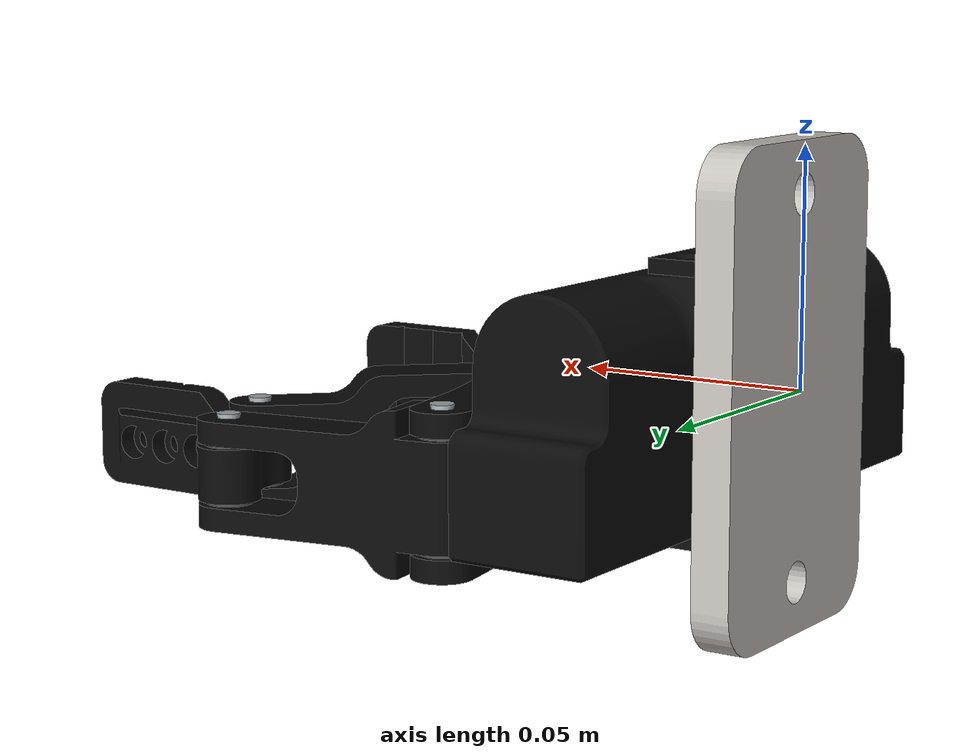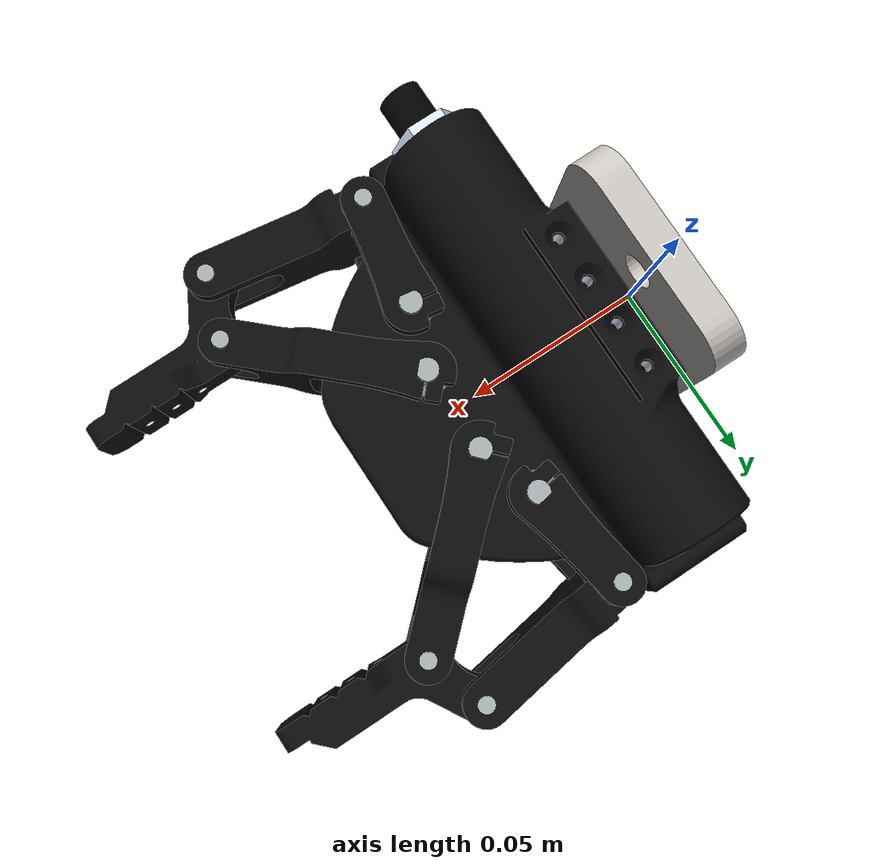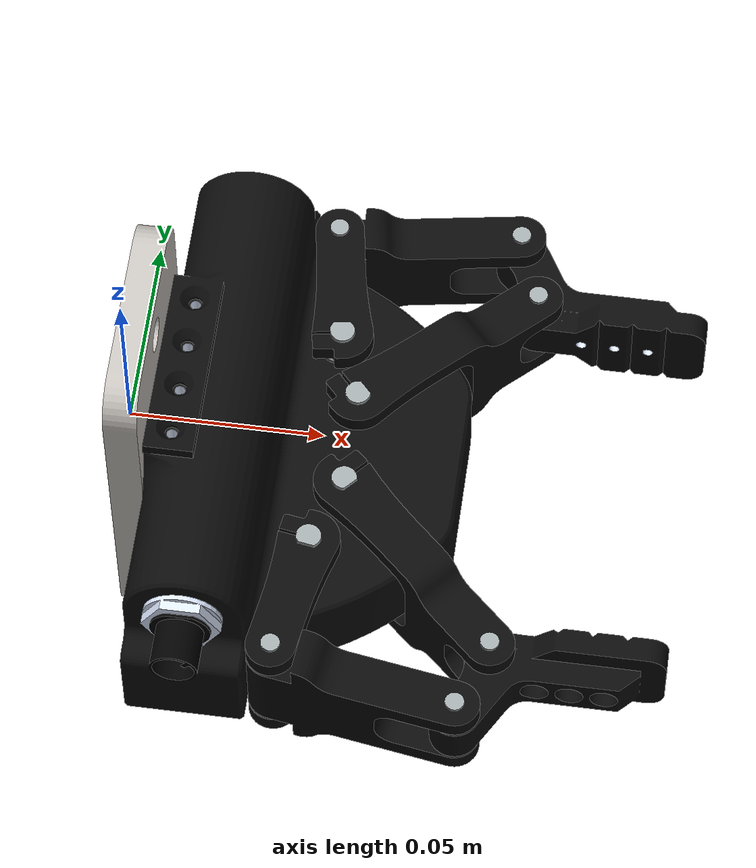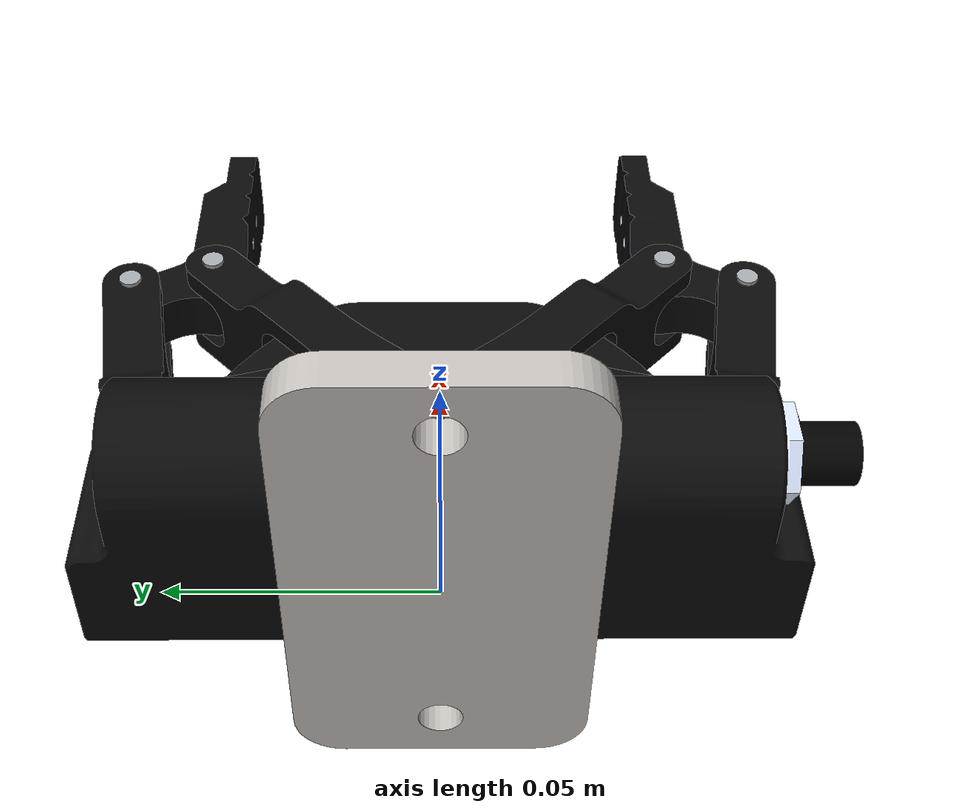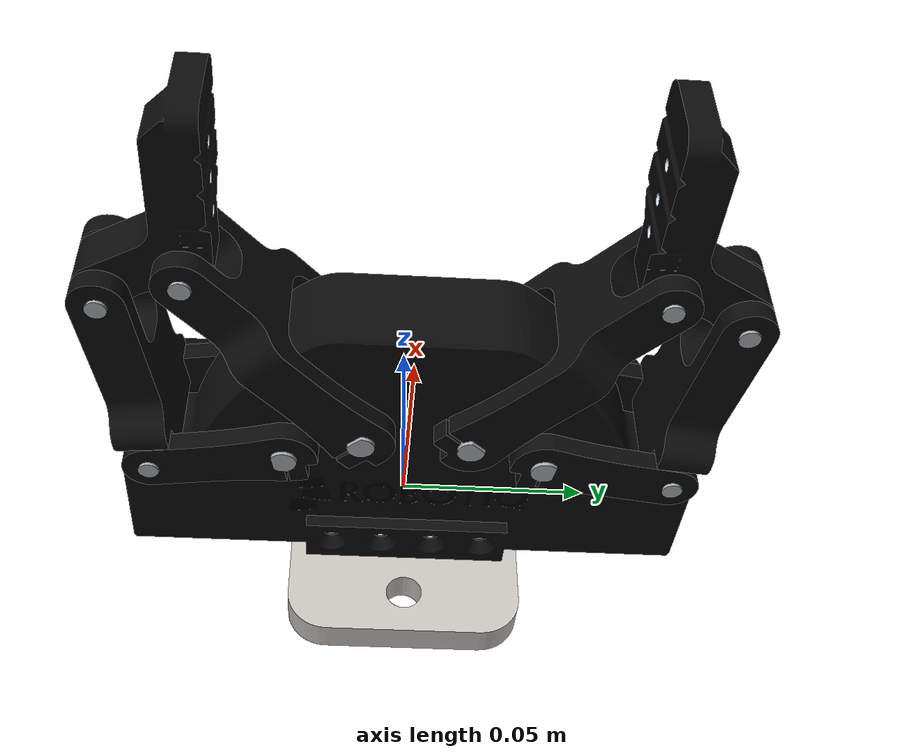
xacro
<?xml version="1.0" ?>

<!--
    Please note that the base link of the 2f gripper is
    "${prefix}robotiq_85_adapter_link"
 -->

<robot name="robotiq_c2_model" xmlns:xacro="http://ros.org/wiki/xacro">
    <xacro:include filename="$(find robotiq_2f_c2_gripper_visualization)/urdf/robotiq_c2_model_macro.xacro" />
    <xacro:robotiq_c2_model prefix=""/>
</robot>

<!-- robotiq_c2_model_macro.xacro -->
<robot xmlns:xacro="http://ros.org/wiki/xacro">
  <xacro:macro name="robotiq_c2_model" params="prefix">

  <link name="${prefix}robotiq_85_adapter_link">
    <visual>
      <geometry>
        <mesh filename="package://robotiq_2f_c2_gripper_visualization/meshes/robotiq_c2/visual/robotiq_85_gripper_adapter_plate.dae"/>
      </geometry>
      <origin rpy="1.5707 0 1.5707" xyz="0 0 0"/>
    </visual>
    <collision>
      <geometry>
        <mesh filename="package://robotiq_2f_c2_gripper_visualization/meshes/robotiq_c2/collision/robotiq_85_gripper_adapter_plate.dae"/>
      </geometry>
      <origin rpy="0 0 1.5707" xyz="0 0 0"/>
    </collision>
  </link>

  <joint name="${prefix}robotiq_85_base_joint" type="fixed">
    <parent link="${prefix}robotiq_85_adapter_link"/>
    <child link="${prefix}robotiq_85_base_link"/>
    <axis xyz="1 0 0"/>
    <origin rpy="0 0 0" xyz=".0085 0 -.0041"/>
  </joint>

  <link name="${prefix}robotiq_85_base_link">
    <visual>
      <geometry>
        <mesh filename="package://robotiq_2f_c2_gripper_visualization/meshes/robotiq_c2/visual/robotiq_85_gripper_base.dae"/>
      </geometry>
      <origin rpy="3.1415 0 1.5707" xyz="0 0 0"/>
    </visual>
    <collision>
      <geometry>
        <mesh filename="package://robotiq_2f_c2_gripper_visualization/meshes/robotiq_c2/collision/robotiq_85_gripper_base.dae"/>
      </geometry>
      <origin rpy="1.5707 0 1.5707" xyz="0 0 0"/>
    </collision>
  </link>

  <joint name="${prefix}robotiq_85_left_knuckle_joint" type="revolute">
    <parent link="${prefix}robotiq_85_base_link"/>
    <child link="${prefix}robotiq_85_left_knuckle_link"/>
    <axis xyz="1 0 0"/>
    <origin rpy="-1.5707 1.5707 0" xyz=".04191 .0306 0"/>
    <limit lower="0" upper=".8575" velocity="2.0" effort="1000"/>
  </joint>

  <joint name="${prefix}robotiq_85_right_knuckle_joint" type="revolute">
    <parent link="${prefix}robotiq_85_base_link"/>
    <child link="${prefix}robotiq_85_right_knuckle_link"/>
    <axis xyz="1 0 0"/>
    <origin rpy="1.5707 -1.5707 0" xyz=".04191 -.0306 0"/>
    <limit lower="0" upper="1.5707" velocity="2.0" effort="1000"/>
    <mimic joint="${prefix}robotiq_85_left_knuckle_joint" multiplier="1"/>
  </joint>

  <link name="${prefix}robotiq_85_left_knuckle_link">
    <visual>
      <geometry>
        <mesh filename="package://robotiq_2f_c2_gripper_visualization/meshes/robotiq_c2/visual/robotiq_85_gripper_joint_0_L.dae"/>
      </geometry>
      <origin rpy="3.14159 -1.5707 0" xyz="0 .04191 -.0306"/>
    </visual>
    <collision>
      <geometry>
        <mesh filename="package://robotiq_2f_c2_gripper_visualization/meshes/robotiq_c2/collision/robotiq_85_gripper_joint_0_L.dae"/>
      </geometry>
      <origin rpy="1.5707 -1.5707 0" xyz="0 .04191 -.0306"/>
    </collision>
  </link>

  <link name="${prefix}robotiq_85_right_knuckle_link">
    <visual>
      <geometry>
        <mesh filename="package://robotiq_2f_c2_gripper_visualization/meshes/robotiq_c2/visual/robotiq_85_gripper_joint_0_R.dae"/>
      </geometry>
      <origin rpy="3.14159 1.5707 0" xyz="0 .04191 -.0306"/>
    </visual>
    <collision>
      <geometry>
        <mesh filename="package://robotiq_2f_c2_gripper_visualization/meshes/robotiq_c2/collision/robotiq_85_gripper_joint_0_R.dae"/>
      </geometry>
      <origin rpy="1.5707 1.5707 0" xyz="0 .04191 -.0306"/>
    </collision>
  </link>

  <joint name="${prefix}robotiq_85_left_finger_joint" type="fixed">
    <parent link="${prefix}robotiq_85_left_knuckle_link"/>
    <child link="${prefix}robotiq_85_left_finger_link"/>
    <axis xyz="1 0 0"/>
    <origin rpy="3.1415 0 0" xyz="0 .00508 .03134"/>
    <limit lower="0" upper="1.5707" velocity="2.0" effort="1000"/>
  </joint>

  <joint name="${prefix}robotiq_85_right_finger_joint" type="fixed">
    <parent link="${prefix}robotiq_85_right_knuckle_link"/>
    <child link="${prefix}robotiq_85_right_finger_link"/>
    <axis xyz="1 0 0"/>
    <origin rpy="3.1415 0 0" xyz="0 .00508 .03134"/>
    <limit lower="0" upper="1.5707" velocity="2.0" effort="1000"/>
  </joint>

  <link name="${prefix}robotiq_85_left_finger_link">
    <visual>
      <geometry>
        <mesh filename="package://robotiq_2f_c2_gripper_visualization/meshes/robotiq_c2/visual/robotiq_85_gripper_joint_1_L.dae"/>
      </geometry>
      <origin rpy="0 1.5707 0" xyz="0 -.03683 .06194"/>
    </visual>
    <collision>
      <geometry>
        <mesh filename="package://robotiq_2f_c2_gripper_visualization/meshes/robotiq_c2/collision/robotiq_85_gripper_joint_1_L.dae"/>
      </geometry>
      <origin rpy="-1.5707 1.5707 0" xyz="0 -.03683 .06194"/>
    </collision>
  </link>

  <link name="${prefix}robotiq_85_right_finger_link">
    <visual>
      <geometry>
        <mesh filename="package://robotiq_2f_c2_gripper_visualization/meshes/robotiq_c2/visual/robotiq_85_gripper_joint_1_R.dae"/>
      </geometry>
      <origin rpy="0 -1.5707 0" xyz="0 -.03683 .06194"/>
    </visual>
    <collision>
      <geometry>
        <mesh filename="package://robotiq_2f_c2_gripper_visualization/meshes/robotiq_c2/collision/robotiq_85_gripper_joint_1_R.dae"/>
      </geometry>
      <origin rpy="-1.5707 -1.5707 0" xyz="0 -.03683 .06194"/>
    </collision>
  </link>

  <joint name="${prefix}robotiq_85_left_inner_knuckle_joint" type="revolute">
    <parent link="${prefix}robotiq_85_base_link"/>
    <child link="${prefix}robotiq_85_left_inner_knuckle_link"/>
    <axis xyz="1 0 0"/>
    <origin rpy="1.5707 1.5707 0" xyz=".04843 .0127 0"/>
    <limit lower="0" upper="1.5707" velocity="2.0" effort="1000"/>
    <mimic joint="${prefix}robotiq_85_left_knuckle_joint" offset="0"/>
  </joint>

  <joint name="${prefix}robotiq_85_right_inner_knuckle_joint" type="revolute">
    <parent link="${prefix}robotiq_85_base_link"/>
    <child link="${prefix}robotiq_85_right_inner_knuckle_link"/>
    <axis xyz="1 0 0"/>
    <origin rpy="-1.5707 -1.5707 0" xyz=".04843 -.0127 0"/>
    <limit lower="0" upper="1.5707" velocity="2.0" effort="1000"/>
    <mimic joint="${prefix}robotiq_85_left_knuckle_joint" offset="0"/>
  </joint>

  <link name="${prefix}robotiq_85_left_inner_knuckle_link">
    <visual>
      <geometry>
        <mesh filename="package://robotiq_2f_c2_gripper_visualization/meshes/robotiq_c2/visual/robotiq_85_gripper_joint_2_L.dae"/>
      </geometry>
      <origin rpy="0 1.5707 0" xyz="0 -.04843 .0127"/>
    </visual>
    <collision>
      <geometry>
        <mesh filename="package://robotiq_2f_c2_gripper_visualization/meshes/robotiq_c2/collision/robotiq_85_gripper_joint_2_L.dae"/>
      </geometry>
      <origin rpy="-1.5707 1.5707 0" xyz="0 -.04843 .0127"/>
    </collision>
  </link>

  <link name="${prefix}robotiq_85_right_inner_knuckle_link">
    <visual>
      <geometry>
        <mesh filename="package://robotiq_2f_c2_gripper_visualization/meshes/robotiq_c2/visual/robotiq_85_gripper_joint_2_R.dae"/>
      </geometry>
      <origin rpy="0 -1.5707 0" xyz="0 -.04843 .0127"/>
    </visual>
    <collision>
      <geometry>
        <mesh filename="package://robotiq_2f_c2_gripper_visualization/meshes/robotiq_c2/collision/robotiq_85_gripper_joint_2_R.dae"/>
      </geometry>
      <origin rpy="-1.5707 -1.5707 0" xyz="0 -.04843 .0127"/>
    </collision>
  </link>

  <joint name="${prefix}robotiq_85_left_finger_tip_joint" type="revolute">
    <parent link="${prefix}robotiq_85_left_inner_knuckle_link"/>
    <child link="${prefix}robotiq_85_left_finger_tip_link"/>
    <axis xyz="1 0 0"/>
    <origin rpy="0 0 0" xyz="0 .04196 -.0388"/>
    <limit lower="0" upper="1.5707" velocity="2.0" effort="1000"/>
    <mimic joint="${prefix}robotiq_85_left_knuckle_joint" multiplier="-1"/>
  </joint>

  <joint name="${prefix}robotiq_85_right_finger_tip_joint" type="revolute">
    <parent link="${prefix}robotiq_85_right_inner_knuckle_link"/>
    <child link="${prefix}robotiq_85_right_finger_tip_link"/>
    <axis xyz="1 0 0"/>
    <origin rpy="0 0 0" xyz="0 .04196 -.0388"/>
    <limit lower="0" upper="1.5707" velocity="2.0" effort="1000"/>
    <mimic joint="${prefix}robotiq_85_left_knuckle_joint" multiplier="-1"/>
  </joint>

  <link name="${prefix}robotiq_85_left_finger_tip_link">
    <visual>
      <geometry>
        <mesh filename="package://robotiq_2f_c2_gripper_visualization/meshes/robotiq_c2/visual/robotiq_85_gripper_joint_3_L.dae"/>
      </geometry>
      <origin rpy="0 1.5707 0" xyz="0 -.090381 .051505"/>
    </visual>
    <collision>
      <geometry>
        <mesh filename="package://robotiq_2f_c2_gripper_visualization/meshes/robotiq_c2/collision/robotiq_85_gripper_joint_3_L.dae"/>
      </geometry>
      <origin rpy="-1.5707 1.5707 0" xyz="0 -.090381 .051505"/>
    </collision>
  </link>

  <link name="${prefix}robotiq_85_right_finger_tip_link">
    <visual>
      <geometry>
        <mesh filename="package://robotiq_2f_c2_gripper_visualization/meshes/robotiq_c2/visual/robotiq_85_gripper_joint_3_R.dae"/>
      </geometry>
      <origin rpy="0 -1.5707 0" xyz="0 -.090381 .051505"/>
    </visual>
    <collision>
      <geometry>
        <mesh filename="package://robotiq_2f_c2_gripper_visualization/meshes/robotiq_c2/collision/robotiq_85_gripper_joint_3_R.dae"/>
      </geometry>
      <origin rpy="-1.5707 -1.5707 0" xyz="0 -.090381 .051505"/>
    </collision>
  </link>

  </xacro:macro>
</robot>
